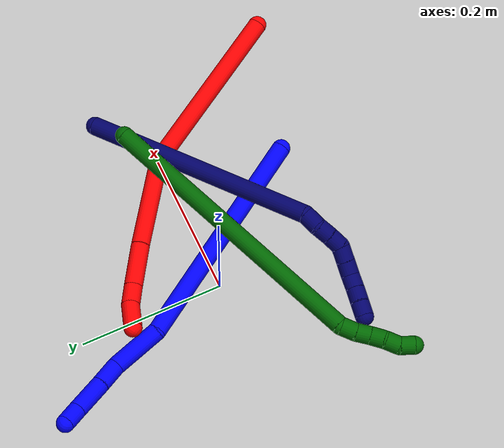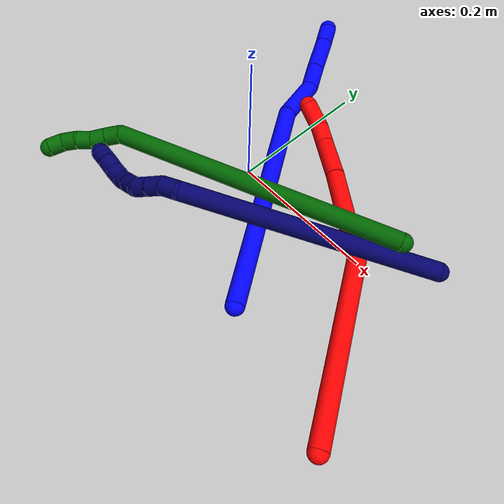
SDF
<sdf version="1.7">
 <world name="default">
  <model name="1">
   <static>0</static>
   <link name="1">
    <collision name="collision-cylinder-e_1_1_4">
     <pose>-0.05583 0.138479 0.051851 -1.21252 -0.361018 0.251735</pose>
     <geometry><cylinder><radius>0.0125</radius><length>0.316114</length></cylinder></geometry>
     <surface>
      <friction><ode><mu>1.16</mu><mu2>1.16</mu2><slip1>0</slip1><slip2>0</slip2></ode></friction>
      <contact><ode><kp>1e+06</kp><kd>1</kd><max_vel>0</max_vel><min_depth>0.001</min_depth></ode></contact>
     </surface>
    </collision>
    <visual name="visual-cylinder-e_1_1_4">
     <pose>-0.05583 0.138479 0.051851 -1.21252 -0.361018 0.251735</pose>
     <geometry><cylinder><radius>0.0125</radius><length>0.316114</length></cylinder></geometry>
     <material><ambient>0 0 1 1</ambient></material>
    </visual>
    <collision name="collision-cylinder-e_2_4_5">
     <pose>-0.131385 0.300863 0.121158 -0.940079 -0.587833 0.305145</pose>
     <geometry><cylinder><radius>0.0125</radius><length>0.07114</length></cylinder></geometry>
     <surface>
      <friction><ode><mu>1.16</mu><mu2>1.16</mu2><slip1>0</slip1><slip2>0</slip2></ode></friction>
      <contact><ode><kp>1e+06</kp><kd>1</kd><max_vel>0</max_vel><min_depth>0.001</min_depth></ode></contact>
     </surface>
    </collision>
    <visual name="visual-cylinder-e_2_4_5">
     <pose>-0.131385 0.300863 0.121158 -0.940079 -0.587833 0.305145</pose>
     <geometry><cylinder><radius>0.0125</radius><length>0.07114</length></cylinder></geometry>
     <material><ambient>0 0 1 1</ambient></material>
    </visual>
    <collision name="collision-cylinder-e_3_5_6">
     <pose>-0.159358 0.34055 0.141235 -1.40619 -0.47591 0.405519</pose>
     <geometry><cylinder><radius>0.0125</radius><length>0.036</length></cylinder></geometry>
     <surface>
      <friction><ode><mu>1.16</mu><mu2>1.16</mu2><slip1>0</slip1><slip2>0</slip2></ode></friction>
      <contact><ode><kp>1e+06</kp><kd>1</kd><max_vel>0</max_vel><min_depth>0.001</min_depth></ode></contact>
     </surface>
    </collision>
    <visual name="visual-cylinder-e_3_5_6">
     <pose>-0.159358 0.34055 0.141235 -1.40619 -0.47591 0.405519</pose>
     <geometry><cylinder><radius>0.0125</radius><length>0.036</length></cylinder></geometry>
     <material><ambient>0 0 1 1</ambient></material>
    </visual>
    <collision name="collision-cylinder-e_4_6_7">
     <pose>-0.179499 0.377821 0.148014 -1.37969 -0.497831 0.413452</pose>
     <geometry><cylinder><radius>0.0125</radius><length>0.049818</length></cylinder></geometry>
     <surface>
      <friction><ode><mu>1.16</mu><mu2>1.16</mu2><slip1>0</slip1><slip2>0</slip2></ode></friction>
      <contact><ode><kp>1e+06</kp><kd>1</kd><max_vel>0</max_vel><min_depth>0.001</min_depth></ode></contact>
     </surface>
    </collision>
    <visual name="visual-cylinder-e_4_6_7">
     <pose>-0.179499 0.377821 0.148014 -1.37969 -0.497831 0.413452</pose>
     <geometry><cylinder><radius>0.0125</radius><length>0.049818</length></cylinder></geometry>
     <material><ambient>0 0 1 1</ambient></material>
    </visual>
    <collision name="collision-cylinder-e_5_7_2">
     <pose>-0.1977 0.411143 0.153376 -1.46934 -0.487492 0.441979</pose>
     <geometry><cylinder><radius>0.0125</radius><length>0.026929</length></cylinder></geometry>
     <surface>
      <friction><ode><mu>1.16</mu><mu2>1.16</mu2><slip1>0</slip1><slip2>0</slip2></ode></friction>
      <contact><ode><kp>1e+06</kp><kd>1</kd><max_vel>0</max_vel><min_depth>0.001</min_depth></ode></contact>
     </surface>
    </collision>
    <visual name="visual-cylinder-e_5_7_2">
     <pose>-0.1977 0.411143 0.153376 -1.46934 -0.487492 0.441979</pose>
     <geometry><cylinder><radius>0.0125</radius><length>0.026929</length></cylinder></geometry>
     <material><ambient>0 0 1 1</ambient></material>
    </visual>
    <collision name="collision-sphere-2">
     <pose>-0.204007 0.422978 0.154581 0 -0 0</pose>
     <geometry><sphere><radius>0.0125</radius></sphere></geometry>
     <surface>
      <friction><ode><mu>1.16</mu><mu2>1.16</mu2><slip1>0</slip1><slip2>0</slip2></ode></friction>
      <contact><ode><kp>1e+06</kp><kd>1</kd><max_vel>0</max_vel><min_depth>0.001</min_depth></ode></contact>
     </surface>
    </collision>
    <visual name="visual-sphere-2">
     <pose>-0.204007 0.422978 0.154581 0 -0 0</pose>
     <geometry><sphere><radius>0.0125</radius></sphere></geometry>
     <material><ambient>0 0 1 1</ambient></material>
    </visual>
    <collision name="collision-sphere-7">
     <pose>-0.191393 0.399308 0.152171 0 -0 0</pose>
     <geometry><sphere><radius>0.0125</radius></sphere></geometry>
     <surface>
      <friction><ode><mu>1.16</mu><mu2>1.16</mu2><slip1>0</slip1><slip2>0</slip2></ode></friction>
      <contact><ode><kp>1e+06</kp><kd>1</kd><max_vel>0</max_vel><min_depth>0.001</min_depth></ode></contact>
     </surface>
    </collision>
    <visual name="visual-sphere-7">
     <pose>-0.191393 0.399308 0.152171 0 -0 0</pose>
     <geometry><sphere><radius>0.0125</radius></sphere></geometry>
     <material><ambient>0 0 1 1</ambient></material>
    </visual>
    <collision name="collision-sphere-6">
     <pose>-0.167604 0.356334 0.143857 0 -0 0</pose>
     <geometry><sphere><radius>0.0125</radius></sphere></geometry>
     <surface>
      <friction><ode><mu>1.16</mu><mu2>1.16</mu2><slip1>0</slip1><slip2>0</slip2></ode></friction>
      <contact><ode><kp>1e+06</kp><kd>1</kd><max_vel>0</max_vel><min_depth>0.001</min_depth></ode></contact>
     </surface>
    </collision>
    <visual name="visual-sphere-6">
     <pose>-0.167604 0.356334 0.143857 0 -0 0</pose>
     <geometry><sphere><radius>0.0125</radius></sphere></geometry>
     <material><ambient>0 0 1 1</ambient></material>
    </visual>
    <collision name="collision-sphere-5">
     <pose>-0.151111 0.324767 0.138613 0 -0 0</pose>
     <geometry><sphere><radius>0.0125</radius></sphere></geometry>
     <surface>
      <friction><ode><mu>1.16</mu><mu2>1.16</mu2><slip1>0</slip1><slip2>0</slip2></ode></friction>
      <contact><ode><kp>1e+06</kp><kd>1</kd><max_vel>0</max_vel><min_depth>0.001</min_depth></ode></contact>
     </surface>
    </collision>
    <visual name="visual-sphere-5">
     <pose>-0.151111 0.324767 0.138613 0 -0 0</pose>
     <geometry><sphere><radius>0.0125</radius></sphere></geometry>
     <material><ambient>0 0 1 1</ambient></material>
    </visual>
    <collision name="collision-sphere-1">
     <geometry><sphere><radius>0.0125</radius></sphere></geometry>
     <surface>
      <friction><ode><mu>1.16</mu><mu2>1.16</mu2><slip1>0</slip1><slip2>0</slip2></ode></friction>
      <contact><ode><kp>1e+06</kp><kd>1</kd><max_vel>0</max_vel><min_depth>0.001</min_depth></ode></contact>
     </surface>
    </collision>
    <visual name="visual-sphere-1">
     <geometry><sphere><radius>0.0125</radius></sphere></geometry>
     <material><ambient>0 0 1 1</ambient></material>
    </visual>
    <collision name="collision-sphere-4">
     <pose>-0.11166 0.276958 0.103702 0 -0 0</pose>
     <geometry><sphere><radius>0.0125</radius></sphere></geometry>
     <surface>
      <friction><ode><mu>1.16</mu><mu2>1.16</mu2><slip1>0</slip1><slip2>0</slip2></ode></friction>
      <contact><ode><kp>1e+06</kp><kd>1</kd><max_vel>0</max_vel><min_depth>0.001</min_depth></ode></contact>
     </surface>
    </collision>
    <visual name="visual-sphere-4">
     <pose>-0.11166 0.276958 0.103702 0 -0 0</pose>
     <geometry><sphere><radius>0.0125</radius></sphere></geometry>
     <material><ambient>0 0 1 1</ambient></material>
    </visual>
    <inertial>
     <pose>-0.093997 0.214664 0.083197 0 -0 0</pose>
     <mass>0.5</mass>
     <inertia>
      <ixx>0.003054</ixx>
      <ixy>0</ixy>
      <ixz>0</ixz>
      <iyy>0.001811</iyy>
      <iyz>0</iyz>
      <izz>-0.001383</izz>
     </inertia>
    </inertial>
   </link>
   <pose>0.144233 -0.157675 0.012123 2.89393 0.345631 -2.1791</pose>
  </model>
  <model name="2">
   <static>0</static>
   <link name="2">
    <collision name="collision-cylinder-e_1_1_4">
     <pose>-0.093471 0.075642 -0.018776 -1.81411 -0.875776 1.07883</pose>
     <geometry><cylinder><radius>0.0125</radius><length>0.243402</length></cylinder></geometry>
     <surface>
      <friction><ode><mu>1.16</mu><mu2>1.16</mu2><slip1>0</slip1><slip2>0</slip2></ode></friction>
      <contact><ode><kp>1e+06</kp><kd>1</kd><max_vel>0</max_vel><min_depth>0.001</min_depth></ode></contact>
     </surface>
    </collision>
    <visual name="visual-cylinder-e_1_1_4">
     <pose>-0.093471 0.075642 -0.018776 -1.81411 -0.875776 1.07883</pose>
     <geometry><cylinder><radius>0.0125</radius><length>0.243402</length></cylinder></geometry>
     <material><ambient>1 0 0 1</ambient></material>
    </visual>
    <collision name="collision-cylinder-e_2_4_5">
     <pose>-0.232215 0.183429 -0.071647 -2.38561 -0.768189 1.58848</pose>
     <geometry><cylinder><radius>0.0125</radius><length>0.130312</length></cylinder></geometry>
     <surface>
      <friction><ode><mu>1.16</mu><mu2>1.16</mu2><slip1>0</slip1><slip2>0</slip2></ode></friction>
      <contact><ode><kp>1e+06</kp><kd>1</kd><max_vel>0</max_vel><min_depth>0.001</min_depth></ode></contact>
     </surface>
    </collision>
    <visual name="visual-cylinder-e_2_4_5">
     <pose>-0.232215 0.183429 -0.071647 -2.38561 -0.768189 1.58848</pose>
     <geometry><cylinder><radius>0.0125</radius><length>0.130312</length></cylinder></geometry>
     <material><ambient>1 0 0 1</ambient></material>
    </visual>
    <collision name="collision-cylinder-e_3_5_6">
     <pose>-0.296247 0.23157 -0.122098 -2.36734 -0.686795 1.43995</pose>
     <geometry><cylinder><radius>0.0125</radius><length>0.059172</length></cylinder></geometry>
     <surface>
      <friction><ode><mu>1.16</mu><mu2>1.16</mu2><slip1>0</slip1><slip2>0</slip2></ode></friction>
      <contact><ode><kp>1e+06</kp><kd>1</kd><max_vel>0</max_vel><min_depth>0.001</min_depth></ode></contact>
     </surface>
    </collision>
    <visual name="visual-cylinder-e_3_5_6">
     <pose>-0.296247 0.23157 -0.122098 -2.36734 -0.686795 1.43995</pose>
     <geometry><cylinder><radius>0.0125</radius><length>0.059172</length></cylinder></geometry>
     <material><ambient>1 0 0 1</ambient></material>
    </visual>
    <collision name="collision-cylinder-e_4_6_7">
     <pose>-0.325308 0.253346 -0.146758 -2.53347 -0.794404 1.85713</pose>
     <geometry><cylinder><radius>0.0125</radius><length>0.028879</length></cylinder></geometry>
     <surface>
      <friction><ode><mu>1.16</mu><mu2>1.16</mu2><slip1>0</slip1><slip2>0</slip2></ode></friction>
      <contact><ode><kp>1e+06</kp><kd>1</kd><max_vel>0</max_vel><min_depth>0.001</min_depth></ode></contact>
     </surface>
    </collision>
    <visual name="visual-cylinder-e_4_6_7">
     <pose>-0.325308 0.253346 -0.146758 -2.53347 -0.794404 1.85713</pose>
     <geometry><cylinder><radius>0.0125</radius><length>0.028879</length></cylinder></geometry>
     <material><ambient>1 0 0 1</ambient></material>
    </visual>
    <collision name="collision-cylinder-e_5_7_2">
     <pose>-0.348696 0.262278 -0.168638 -2.91351 -0.753891 2.57832</pose>
     <geometry><cylinder><radius>0.0125</radius><length>0.038235</length></cylinder></geometry>
     <surface>
      <friction><ode><mu>1.16</mu><mu2>1.16</mu2><slip1>0</slip1><slip2>0</slip2></ode></friction>
      <contact><ode><kp>1e+06</kp><kd>1</kd><max_vel>0</max_vel><min_depth>0.001</min_depth></ode></contact>
     </surface>
    </collision>
    <visual name="visual-cylinder-e_5_7_2">
     <pose>-0.348696 0.262278 -0.168638 -2.91351 -0.753891 2.57832</pose>
     <geometry><cylinder><radius>0.0125</radius><length>0.038235</length></cylinder></geometry>
     <material><ambient>1 0 0 1</ambient></material>
    </visual>
    <collision name="collision-sphere-2">
     <pose>-0.361781 0.26543 -0.182215 0 -0 0</pose>
     <geometry><sphere><radius>0.0125</radius></sphere></geometry>
     <surface>
      <friction><ode><mu>1.16</mu><mu2>1.16</mu2><slip1>0</slip1><slip2>0</slip2></ode></friction>
      <contact><ode><kp>1e+06</kp><kd>1</kd><max_vel>0</max_vel><min_depth>0.001</min_depth></ode></contact>
     </surface>
    </collision>
    <visual name="visual-sphere-2">
     <pose>-0.361781 0.26543 -0.182215 0 -0 0</pose>
     <geometry><sphere><radius>0.0125</radius></sphere></geometry>
     <material><ambient>1 0 0 1</ambient></material>
    </visual>
    <collision name="collision-sphere-7">
     <pose>-0.33561 0.259127 -0.155062 0 -0 0</pose>
     <geometry><sphere><radius>0.0125</radius></sphere></geometry>
     <surface>
      <friction><ode><mu>1.16</mu><mu2>1.16</mu2><slip1>0</slip1><slip2>0</slip2></ode></friction>
      <contact><ode><kp>1e+06</kp><kd>1</kd><max_vel>0</max_vel><min_depth>0.001</min_depth></ode></contact>
     </surface>
    </collision>
    <visual name="visual-sphere-7">
     <pose>-0.33561 0.259127 -0.155062 0 -0 0</pose>
     <geometry><sphere><radius>0.0125</radius></sphere></geometry>
     <material><ambient>1 0 0 1</ambient></material>
    </visual>
    <collision name="collision-sphere-6">
     <pose>-0.315006 0.247566 -0.138454 0 -0 0</pose>
     <geometry><sphere><radius>0.0125</radius></sphere></geometry>
     <surface>
      <friction><ode><mu>1.16</mu><mu2>1.16</mu2><slip1>0</slip1><slip2>0</slip2></ode></friction>
      <contact><ode><kp>1e+06</kp><kd>1</kd><max_vel>0</max_vel><min_depth>0.001</min_depth></ode></contact>
     </surface>
    </collision>
    <visual name="visual-sphere-6">
     <pose>-0.315006 0.247566 -0.138454 0 -0 0</pose>
     <geometry><sphere><radius>0.0125</radius></sphere></geometry>
     <material><ambient>1 0 0 1</ambient></material>
    </visual>
    <collision name="collision-sphere-5">
     <pose>-0.277488 0.215573 -0.105741 0 -0 0</pose>
     <geometry><sphere><radius>0.0125</radius></sphere></geometry>
     <surface>
      <friction><ode><mu>1.16</mu><mu2>1.16</mu2><slip1>0</slip1><slip2>0</slip2></ode></friction>
      <contact><ode><kp>1e+06</kp><kd>1</kd><max_vel>0</max_vel><min_depth>0.001</min_depth></ode></contact>
     </surface>
    </collision>
    <visual name="visual-sphere-5">
     <pose>-0.277488 0.215573 -0.105741 0 -0 0</pose>
     <geometry><sphere><radius>0.0125</radius></sphere></geometry>
     <material><ambient>1 0 0 1</ambient></material>
    </visual>
    <collision name="collision-sphere-1">
     <geometry><sphere><radius>0.0125</radius></sphere></geometry>
     <surface>
      <friction><ode><mu>1.16</mu><mu2>1.16</mu2><slip1>0</slip1><slip2>0</slip2></ode></friction>
      <contact><ode><kp>1e+06</kp><kd>1</kd><max_vel>0</max_vel><min_depth>0.001</min_depth></ode></contact>
     </surface>
    </collision>
    <visual name="visual-sphere-1">
     <geometry><sphere><radius>0.0125</radius></sphere></geometry>
     <material><ambient>1 0 0 1</ambient></material>
    </visual>
    <collision name="collision-sphere-4">
     <pose>-0.186942 0.151284 -0.037553 0 -0 0</pose>
     <geometry><sphere><radius>0.0125</radius></sphere></geometry>
     <surface>
      <friction><ode><mu>1.16</mu><mu2>1.16</mu2><slip1>0</slip1><slip2>0</slip2></ode></friction>
      <contact><ode><kp>1e+06</kp><kd>1</kd><max_vel>0</max_vel><min_depth>0.001</min_depth></ode></contact>
     </surface>
    </collision>
    <visual name="visual-sphere-4">
     <pose>-0.186942 0.151284 -0.037553 0 -0 0</pose>
     <geometry><sphere><radius>0.0125</radius></sphere></geometry>
     <material><ambient>1 0 0 1</ambient></material>
    </visual>
    <inertial>
     <pose>-0.186536 0.146723 -0.063635 0 -0 0</pose>
     <mass>0.5</mass>
     <inertia>
      <ixx>0.001173</ixx>
      <ixy>0</ixy>
      <ixz>0</ixz>
      <iyy>0.001625</iyy>
      <iyz>0</iyz>
      <izz>0.000207</izz>
     </inertia>
    </inertial>
   </link>
   <pose>0.327459 -0.20726 0.013709 -1.52382 0.678196 -1.1389</pose>
  </model>
  <model name="6">
   <static>0</static>
   <link name="6">
    <collision name="collision-cylinder-e_1_1_4">
     <pose>-0.178353 -0.077156 0.040644 1.08596 -1.11602 -0.720496</pose>
     <geometry><cylinder><radius>0.0125</radius><length>0.397064</length></cylinder></geometry>
     <surface>
      <friction><ode><mu>1.16</mu><mu2>1.16</mu2><slip1>0</slip1><slip2>0</slip2></ode></friction>
      <contact><ode><kp>1e+06</kp><kd>1</kd><max_vel>0</max_vel><min_depth>0.001</min_depth></ode></contact>
     </surface>
    </collision>
    <visual name="visual-cylinder-e_1_1_4">
     <pose>-0.178353 -0.077156 0.040644 1.08596 -1.11602 -0.720496</pose>
     <geometry><cylinder><radius>0.0125</radius><length>0.397064</length></cylinder></geometry>
     <material><ambient>0 0.392157 0.003922 1</ambient></material>
    </visual>
    <collision name="collision-cylinder-e_2_4_5">
     <pose>-0.365967 -0.158929 0.078074 2.17893 -1.02491 -1.64502</pose>
     <geometry><cylinder><radius>0.0125</radius><length>0.02167</length></cylinder></geometry>
     <surface>
      <friction><ode><mu>1.16</mu><mu2>1.16</mu2><slip1>0</slip1><slip2>0</slip2></ode></friction>
      <contact><ode><kp>1e+06</kp><kd>1</kd><max_vel>0</max_vel><min_depth>0.001</min_depth></ode></contact>
     </surface>
    </collision>
    <visual name="visual-cylinder-e_2_4_5">
     <pose>-0.365967 -0.158929 0.078074 2.17893 -1.02491 -1.64502</pose>
     <geometry><cylinder><radius>0.0125</radius><length>0.02167</length></cylinder></geometry>
     <material><ambient>0 0.392157 0.003922 1</ambient></material>
    </visual>
    <collision name="collision-cylinder-e_3_5_6">
     <pose>-0.382937 -0.169257 0.071218 2.13861 -0.849943 -1.38014</pose>
     <geometry><cylinder><radius>0.0125</radius><length>0.020526</length></cylinder></geometry>
     <surface>
      <friction><ode><mu>1.16</mu><mu2>1.16</mu2><slip1>0</slip1><slip2>0</slip2></ode></friction>
      <contact><ode><kp>1e+06</kp><kd>1</kd><max_vel>0</max_vel><min_depth>0.001</min_depth></ode></contact>
     </surface>
    </collision>
    <visual name="visual-cylinder-e_3_5_6">
     <pose>-0.382937 -0.169257 0.071218 2.13861 -0.849943 -1.38014</pose>
     <geometry><cylinder><radius>0.0125</radius><length>0.020526</length></cylinder></geometry>
     <material><ambient>0 0.392157 0.003922 1</ambient></material>
    </visual>
    <collision name="collision-cylinder-e_4_6_7">
     <pose>-0.398237 -0.181466 0.066156 1.78576 -0.851235 -1.02551</pose>
     <geometry><cylinder><radius>0.0125</radius><length>0.020185</length></cylinder></geometry>
     <surface>
      <friction><ode><mu>1.16</mu><mu2>1.16</mu2><slip1>0</slip1><slip2>0</slip2></ode></friction>
      <contact><ode><kp>1e+06</kp><kd>1</kd><max_vel>0</max_vel><min_depth>0.001</min_depth></ode></contact>
     </surface>
    </collision>
    <visual name="visual-cylinder-e_4_6_7">
     <pose>-0.398237 -0.181466 0.066156 1.78576 -0.851235 -1.02551</pose>
     <geometry><cylinder><radius>0.0125</radius><length>0.020185</length></cylinder></geometry>
     <material><ambient>0 0.392157 0.003922 1</ambient></material>
    </visual>
    <collision name="collision-cylinder-e_5_7_8">
     <pose>-0.414379 -0.192566 0.061939 2.1172 -1.00875 -1.5524</pose>
     <geometry><cylinder><radius>0.0125</radius><length>0.020211</length></cylinder></geometry>
     <surface>
      <friction><ode><mu>1.16</mu><mu2>1.16</mu2><slip1>0</slip1><slip2>0</slip2></ode></friction>
      <contact><ode><kp>1e+06</kp><kd>1</kd><max_vel>0</max_vel><min_depth>0.001</min_depth></ode></contact>
     </surface>
    </collision>
    <visual name="visual-cylinder-e_5_7_8">
     <pose>-0.414379 -0.192566 0.061939 2.1172 -1.00875 -1.5524</pose>
     <geometry><cylinder><radius>0.0125</radius><length>0.020211</length></cylinder></geometry>
     <material><ambient>0 0.392157 0.003922 1</ambient></material>
    </visual>
    <collision name="collision-cylinder-e_6_8_2">
     <pose>-0.428705 -0.203875 0.054128 2.2125 -0.603745 -1.11198</pose>
     <geometry><cylinder><radius>0.0125</radius><length>0.020344</length></cylinder></geometry>
     <surface>
      <friction><ode><mu>1.16</mu><mu2>1.16</mu2><slip1>0</slip1><slip2>0</slip2></ode></friction>
      <contact><ode><kp>1e+06</kp><kd>1</kd><max_vel>0</max_vel><min_depth>0.001</min_depth></ode></contact>
     </surface>
    </collision>
    <visual name="visual-cylinder-e_6_8_2">
     <pose>-0.428705 -0.203875 0.054128 2.2125 -0.603745 -1.11198</pose>
     <geometry><cylinder><radius>0.0125</radius><length>0.020344</length></cylinder></geometry>
     <material><ambient>0 0.392157 0.003922 1</ambient></material>
    </visual>
    <collision name="collision-sphere-2">
     <pose>-0.43448 -0.210583 0.049116 0 -0 0</pose>
     <geometry><sphere><radius>0.0125</radius></sphere></geometry>
     <surface>
      <friction><ode><mu>1.16</mu><mu2>1.16</mu2><slip1>0</slip1><slip2>0</slip2></ode></friction>
      <contact><ode><kp>1e+06</kp><kd>1</kd><max_vel>0</max_vel><min_depth>0.001</min_depth></ode></contact>
     </surface>
    </collision>
    <visual name="visual-sphere-2">
     <pose>-0.43448 -0.210583 0.049116 0 -0 0</pose>
     <geometry><sphere><radius>0.0125</radius></sphere></geometry>
     <material><ambient>0 0.392157 0.003922 1</ambient></material>
    </visual>
    <collision name="collision-sphere-4">
     <pose>-0.356707 -0.154313 0.081288 0 -0 0</pose>
     <geometry><sphere><radius>0.0125</radius></sphere></geometry>
     <surface>
      <friction><ode><mu>1.16</mu><mu2>1.16</mu2><slip1>0</slip1><slip2>0</slip2></ode></friction>
      <contact><ode><kp>1e+06</kp><kd>1</kd><max_vel>0</max_vel><min_depth>0.001</min_depth></ode></contact>
     </surface>
    </collision>
    <visual name="visual-sphere-4">
     <pose>-0.356707 -0.154313 0.081288 0 -0 0</pose>
     <geometry><sphere><radius>0.0125</radius></sphere></geometry>
     <material><ambient>0 0.392157 0.003922 1</ambient></material>
    </visual>
    <collision name="collision-sphere-1">
     <geometry><sphere><radius>0.0125</radius></sphere></geometry>
     <surface>
      <friction><ode><mu>1.16</mu><mu2>1.16</mu2><slip1>0</slip1><slip2>0</slip2></ode></friction>
      <contact><ode><kp>1e+06</kp><kd>1</kd><max_vel>0</max_vel><min_depth>0.001</min_depth></ode></contact>
     </surface>
    </collision>
    <visual name="visual-sphere-1">
     <geometry><sphere><radius>0.0125</radius></sphere></geometry>
     <material><ambient>0 0.392157 0.003922 1</ambient></material>
    </visual>
    <collision name="collision-sphere-8">
     <pose>-0.42293 -0.197167 0.05914 0 -0 0</pose>
     <geometry><sphere><radius>0.0125</radius></sphere></geometry>
     <surface>
      <friction><ode><mu>1.16</mu><mu2>1.16</mu2><slip1>0</slip1><slip2>0</slip2></ode></friction>
      <contact><ode><kp>1e+06</kp><kd>1</kd><max_vel>0</max_vel><min_depth>0.001</min_depth></ode></contact>
     </surface>
    </collision>
    <visual name="visual-sphere-8">
     <pose>-0.42293 -0.197167 0.05914 0 -0 0</pose>
     <geometry><sphere><radius>0.0125</radius></sphere></geometry>
     <material><ambient>0 0.392157 0.003922 1</ambient></material>
    </visual>
    <collision name="collision-sphere-5">
     <pose>-0.375227 -0.163546 0.07486 0 -0 0</pose>
     <geometry><sphere><radius>0.0125</radius></sphere></geometry>
     <surface>
      <friction><ode><mu>1.16</mu><mu2>1.16</mu2><slip1>0</slip1><slip2>0</slip2></ode></friction>
      <contact><ode><kp>1e+06</kp><kd>1</kd><max_vel>0</max_vel><min_depth>0.001</min_depth></ode></contact>
     </surface>
    </collision>
    <visual name="visual-sphere-5">
     <pose>-0.375227 -0.163546 0.07486 0 -0 0</pose>
     <geometry><sphere><radius>0.0125</radius></sphere></geometry>
     <material><ambient>0 0.392157 0.003922 1</ambient></material>
    </visual>
    <collision name="collision-sphere-6">
     <pose>-0.390647 -0.174968 0.067575 0 -0 0</pose>
     <geometry><sphere><radius>0.0125</radius></sphere></geometry>
     <surface>
      <friction><ode><mu>1.16</mu><mu2>1.16</mu2><slip1>0</slip1><slip2>0</slip2></ode></friction>
      <contact><ode><kp>1e+06</kp><kd>1</kd><max_vel>0</max_vel><min_depth>0.001</min_depth></ode></contact>
     </surface>
    </collision>
    <visual name="visual-sphere-6">
     <pose>-0.390647 -0.174968 0.067575 0 -0 0</pose>
     <geometry><sphere><radius>0.0125</radius></sphere></geometry>
     <material><ambient>0 0.392157 0.003922 1</ambient></material>
    </visual>
    <collision name="collision-sphere-7">
     <pose>-0.405828 -0.187964 0.064737 0 -0 0</pose>
     <geometry><sphere><radius>0.0125</radius></sphere></geometry>
     <surface>
      <friction><ode><mu>1.16</mu><mu2>1.16</mu2><slip1>0</slip1><slip2>0</slip2></ode></friction>
      <contact><ode><kp>1e+06</kp><kd>1</kd><max_vel>0</max_vel><min_depth>0.001</min_depth></ode></contact>
     </surface>
    </collision>
    <visual name="visual-sphere-7">
     <pose>-0.405828 -0.187964 0.064737 0 -0 0</pose>
     <geometry><sphere><radius>0.0125</radius></sphere></geometry>
     <material><ambient>0 0.392157 0.003922 1</ambient></material>
    </visual>
    <inertial>
     <pose>-0.223487 -0.098513 0.045961 0 -0 0</pose>
     <mass>0.5</mass>
     <inertia>
      <ixx>0.000173</ixx>
      <ixy>0</ixy>
      <ixz>0</ixz>
      <iyy>0.003043</iyy>
      <iyz>0</iyz>
      <izz>0.006748</izz>
     </inertia>
    </inertial>
   </link>
   <pose>0.233207 0.034036 0.053063 -0.808544 -0.445494 0.254426</pose>
  </model>
  <model name="7">
   <static>0</static>
   <link name="7">
    <collision name="collision-cylinder-e_1_1_4">
     <pose>-0.095029 -0.041649 0.131849 0.305962 -0.602129 -0.095677</pose>
     <geometry><cylinder><radius>0.0125</radius><length>0.335555</length></cylinder></geometry>
     <surface>
      <friction><ode><mu>1.16</mu><mu2>1.16</mu2><slip1>0</slip1><slip2>0</slip2></ode></friction>
      <contact><ode><kp>1e+06</kp><kd>1</kd><max_vel>0</max_vel><min_depth>0.001</min_depth></ode></contact>
     </surface>
    </collision>
    <visual name="visual-cylinder-e_1_1_4">
     <pose>-0.095029 -0.041649 0.131849 0.305962 -0.602129 -0.095677</pose>
     <geometry><cylinder><radius>0.0125</radius><length>0.335555</length></cylinder></geometry>
     <material><ambient>0.003922 0 0.403922 1</ambient></material>
    </visual>
    <collision name="collision-cylinder-e_2_4_5">
     <pose>-0.199818 -0.085985 0.268816 0.483538 -1.03609 -0.27927</pose>
     <geometry><cylinder><radius>0.0125</radius><length>0.022687</length></cylinder></geometry>
     <surface>
      <friction><ode><mu>1.16</mu><mu2>1.16</mu2><slip1>0</slip1><slip2>0</slip2></ode></friction>
      <contact><ode><kp>1e+06</kp><kd>1</kd><max_vel>0</max_vel><min_depth>0.001</min_depth></ode></contact>
     </surface>
    </collision>
    <visual name="visual-cylinder-e_2_4_5">
     <pose>-0.199818 -0.085985 0.268816 0.483538 -1.03609 -0.27927</pose>
     <geometry><cylinder><radius>0.0125</radius><length>0.022687</length></cylinder></geometry>
     <material><ambient>0.003922 0 0.403922 1</ambient></material>
    </visual>
    <collision name="collision-cylinder-e_3_5_6">
     <pose>-0.217817 -0.093772 0.276572 1.09346 -0.96211 -0.615175</pose>
     <geometry><cylinder><radius>0.0125</radius><length>0.020085</length></cylinder></geometry>
     <surface>
      <friction><ode><mu>1.16</mu><mu2>1.16</mu2><slip1>0</slip1><slip2>0</slip2></ode></friction>
      <contact><ode><kp>1e+06</kp><kd>1</kd><max_vel>0</max_vel><min_depth>0.001</min_depth></ode></contact>
     </surface>
    </collision>
    <visual name="visual-cylinder-e_3_5_6">
     <pose>-0.217817 -0.093772 0.276572 1.09346 -0.96211 -0.615175</pose>
     <geometry><cylinder><radius>0.0125</radius><length>0.020085</length></cylinder></geometry>
     <material><ambient>0.003922 0 0.403922 1</ambient></material>
    </visual>
    <collision name="collision-cylinder-e_4_6_7">
     <pose>-0.234761 -0.10376 0.281356 1.1569 -1.02074 -0.700925</pose>
     <geometry><cylinder><radius>0.0125</radius><length>0.020422</length></cylinder></geometry>
     <surface>
      <friction><ode><mu>1.16</mu><mu2>1.16</mu2><slip1>0</slip1><slip2>0</slip2></ode></friction>
      <contact><ode><kp>1e+06</kp><kd>1</kd><max_vel>0</max_vel><min_depth>0.001</min_depth></ode></contact>
     </surface>
    </collision>
    <visual name="visual-cylinder-e_4_6_7">
     <pose>-0.234761 -0.10376 0.281356 1.1569 -1.02074 -0.700925</pose>
     <geometry><cylinder><radius>0.0125</radius><length>0.020422</length></cylinder></geometry>
     <material><ambient>0.003922 0 0.403922 1</ambient></material>
    </visual>
    <collision name="collision-cylinder-e_5_7_8">
     <pose>-0.25398 -0.109455 0.283231 1.8951 -1.48982 -1.81734</pose>
     <geometry><cylinder><radius>0.0125</radius><length>0.021098</length></cylinder></geometry>
     <surface>
      <friction><ode><mu>1.16</mu><mu2>1.16</mu2><slip1>0</slip1><slip2>0</slip2></ode></friction>
      <contact><ode><kp>1e+06</kp><kd>1</kd><max_vel>0</max_vel><min_depth>0.001</min_depth></ode></contact>
     </surface>
    </collision>
    <visual name="visual-cylinder-e_5_7_8">
     <pose>-0.25398 -0.109455 0.283231 1.8951 -1.48982 -1.81734</pose>
     <geometry><cylinder><radius>0.0125</radius><length>0.021098</length></cylinder></geometry>
     <material><ambient>0.003922 0 0.403922 1</ambient></material>
    </visual>
    <collision name="collision-cylinder-e_6_8_9">
     <pose>-0.274527 -0.110983 0.28267 1.9531 -1.49368 -1.88051</pose>
     <geometry><cylinder><radius>0.0125</radius><length>0.020124</length></cylinder></geometry>
     <surface>
      <friction><ode><mu>1.16</mu><mu2>1.16</mu2><slip1>0</slip1><slip2>0</slip2></ode></friction>
      <contact><ode><kp>1e+06</kp><kd>1</kd><max_vel>0</max_vel><min_depth>0.001</min_depth></ode></contact>
     </surface>
    </collision>
    <visual name="visual-cylinder-e_6_8_9">
     <pose>-0.274527 -0.110983 0.28267 1.9531 -1.49368 -1.88051</pose>
     <geometry><cylinder><radius>0.0125</radius><length>0.020124</length></cylinder></geometry>
     <material><ambient>0.003922 0 0.403922 1</ambient></material>
    </visual>
    <collision name="collision-cylinder-e_7_9_10">
     <pose>-0.293923 -0.109786 0.28532 -0.57777 -1.21229 0.406347</pose>
     <geometry><cylinder><radius>0.0125</radius><length>0.02</length></cylinder></geometry>
     <surface>
      <friction><ode><mu>1.16</mu><mu2>1.16</mu2><slip1>0</slip1><slip2>0</slip2></ode></friction>
      <contact><ode><kp>1e+06</kp><kd>1</kd><max_vel>0</max_vel><min_depth>0.001</min_depth></ode></contact>
     </surface>
    </collision>
    <visual name="visual-cylinder-e_7_9_10">
     <pose>-0.293923 -0.109786 0.28532 -0.57777 -1.21229 0.406347</pose>
     <geometry><cylinder><radius>0.0125</radius><length>0.02</length></cylinder></geometry>
     <material><ambient>0.003922 0 0.403922 1</ambient></material>
    </visual>
    <collision name="collision-cylinder-e_8_10_11">
     <pose>-0.312369 -0.105212 0.291498 -0.68727 -1.13856 0.450229</pose>
     <geometry><cylinder><radius>0.0125</radius><length>0.020003</length></cylinder></geometry>
     <surface>
      <friction><ode><mu>1.16</mu><mu2>1.16</mu2><slip1>0</slip1><slip2>0</slip2></ode></friction>
      <contact><ode><kp>1e+06</kp><kd>1</kd><max_vel>0</max_vel><min_depth>0.001</min_depth></ode></contact>
     </surface>
    </collision>
    <visual name="visual-cylinder-e_8_10_11">
     <pose>-0.312369 -0.105212 0.291498 -0.68727 -1.13856 0.450229</pose>
     <geometry><cylinder><radius>0.0125</radius><length>0.020003</length></cylinder></geometry>
     <material><ambient>0.003922 0 0.403922 1</ambient></material>
    </visual>
    <collision name="collision-cylinder-e_9_11_2">
     <pose>-0.330893 -0.100517 0.297376 -0.657229 -1.23141 0.473399</pose>
     <geometry><cylinder><radius>0.0125</radius><length>0.020025</length></cylinder></geometry>
     <surface>
      <friction><ode><mu>1.16</mu><mu2>1.16</mu2><slip1>0</slip1><slip2>0</slip2></ode></friction>
      <contact><ode><kp>1e+06</kp><kd>1</kd><max_vel>0</max_vel><min_depth>0.001</min_depth></ode></contact>
     </surface>
    </collision>
    <visual name="visual-cylinder-e_9_11_2">
     <pose>-0.330893 -0.100517 0.297376 -0.657229 -1.23141 0.473399</pose>
     <geometry><cylinder><radius>0.0125</radius><length>0.020025</length></cylinder></geometry>
     <material><ambient>0.003922 0 0.403922 1</ambient></material>
    </visual>
    <collision name="collision-sphere-2">
     <pose>-0.340334 -0.098481 0.300015 0 -0 0</pose>
     <geometry><sphere><radius>0.0125</radius></sphere></geometry>
     <surface>
      <friction><ode><mu>1.16</mu><mu2>1.16</mu2><slip1>0</slip1><slip2>0</slip2></ode></friction>
      <contact><ode><kp>1e+06</kp><kd>1</kd><max_vel>0</max_vel><min_depth>0.001</min_depth></ode></contact>
     </surface>
    </collision>
    <visual name="visual-sphere-2">
     <pose>-0.340334 -0.098481 0.300015 0 -0 0</pose>
     <geometry><sphere><radius>0.0125</radius></sphere></geometry>
     <material><ambient>0.003922 0 0.403922 1</ambient></material>
    </visual>
    <collision name="collision-sphere-11">
     <pose>-0.321451 -0.102553 0.294737 0 -0 0</pose>
     <geometry><sphere><radius>0.0125</radius></sphere></geometry>
     <surface>
      <friction><ode><mu>1.16</mu><mu2>1.16</mu2><slip1>0</slip1><slip2>0</slip2></ode></friction>
      <contact><ode><kp>1e+06</kp><kd>1</kd><max_vel>0</max_vel><min_depth>0.001</min_depth></ode></contact>
     </surface>
    </collision>
    <visual name="visual-sphere-11">
     <pose>-0.321451 -0.102553 0.294737 0 -0 0</pose>
     <geometry><sphere><radius>0.0125</radius></sphere></geometry>
     <material><ambient>0.003922 0 0.403922 1</ambient></material>
    </visual>
    <collision name="collision-sphere-10">
     <pose>-0.303287 -0.10787 0.28826 0 -0 0</pose>
     <geometry><sphere><radius>0.0125</radius></sphere></geometry>
     <surface>
      <friction><ode><mu>1.16</mu><mu2>1.16</mu2><slip1>0</slip1><slip2>0</slip2></ode></friction>
      <contact><ode><kp>1e+06</kp><kd>1</kd><max_vel>0</max_vel><min_depth>0.001</min_depth></ode></contact>
     </surface>
    </collision>
    <visual name="visual-sphere-10">
     <pose>-0.303287 -0.10787 0.28826 0 -0 0</pose>
     <geometry><sphere><radius>0.0125</radius></sphere></geometry>
     <material><ambient>0.003922 0 0.403922 1</ambient></material>
    </visual>
    <collision name="collision-sphere-9">
     <pose>-0.284559 -0.111702 0.282381 0 -0 0</pose>
     <geometry><sphere><radius>0.0125</radius></sphere></geometry>
     <surface>
      <friction><ode><mu>1.16</mu><mu2>1.16</mu2><slip1>0</slip1><slip2>0</slip2></ode></friction>
      <contact><ode><kp>1e+06</kp><kd>1</kd><max_vel>0</max_vel><min_depth>0.001</min_depth></ode></contact>
     </surface>
    </collision>
    <visual name="visual-sphere-9">
     <pose>-0.284559 -0.111702 0.282381 0 -0 0</pose>
     <geometry><sphere><radius>0.0125</radius></sphere></geometry>
     <material><ambient>0.003922 0 0.403922 1</ambient></material>
    </visual>
    <collision name="collision-sphere-4">
     <pose>-0.190058 -0.083297 0.263698 0 -0 0</pose>
     <geometry><sphere><radius>0.0125</radius></sphere></geometry>
     <surface>
      <friction><ode><mu>1.16</mu><mu2>1.16</mu2><slip1>0</slip1><slip2>0</slip2></ode></friction>
      <contact><ode><kp>1e+06</kp><kd>1</kd><max_vel>0</max_vel><min_depth>0.001</min_depth></ode></contact>
     </surface>
    </collision>
    <visual name="visual-sphere-4">
     <pose>-0.190058 -0.083297 0.263698 0 -0 0</pose>
     <geometry><sphere><radius>0.0125</radius></sphere></geometry>
     <material><ambient>0.003922 0 0.403922 1</ambient></material>
    </visual>
    <collision name="collision-sphere-1">
     <geometry><sphere><radius>0.0125</radius></sphere></geometry>
     <surface>
      <friction><ode><mu>1.16</mu><mu2>1.16</mu2><slip1>0</slip1><slip2>0</slip2></ode></friction>
      <contact><ode><kp>1e+06</kp><kd>1</kd><max_vel>0</max_vel><min_depth>0.001</min_depth></ode></contact>
     </surface>
    </collision>
    <visual name="visual-sphere-1">
     <geometry><sphere><radius>0.0125</radius></sphere></geometry>
     <material><ambient>0.003922 0 0.403922 1</ambient></material>
    </visual>
    <collision name="collision-sphere-8">
     <pose>-0.264494 -0.110264 0.282959 0 -0 0</pose>
     <geometry><sphere><radius>0.0125</radius></sphere></geometry>
     <surface>
      <friction><ode><mu>1.16</mu><mu2>1.16</mu2><slip1>0</slip1><slip2>0</slip2></ode></friction>
      <contact><ode><kp>1e+06</kp><kd>1</kd><max_vel>0</max_vel><min_depth>0.001</min_depth></ode></contact>
     </surface>
    </collision>
    <visual name="visual-sphere-8">
     <pose>-0.264494 -0.110264 0.282959 0 -0 0</pose>
     <geometry><sphere><radius>0.0125</radius></sphere></geometry>
     <material><ambient>0.003922 0 0.403922 1</ambient></material>
    </visual>
    <collision name="collision-sphere-5">
     <pose>-0.209578 -0.088672 0.273934 0 -0 0</pose>
     <geometry><sphere><radius>0.0125</radius></sphere></geometry>
     <surface>
      <friction><ode><mu>1.16</mu><mu2>1.16</mu2><slip1>0</slip1><slip2>0</slip2></ode></friction>
      <contact><ode><kp>1e+06</kp><kd>1</kd><max_vel>0</max_vel><min_depth>0.001</min_depth></ode></contact>
     </surface>
    </collision>
    <visual name="visual-sphere-5">
     <pose>-0.209578 -0.088672 0.273934 0 -0 0</pose>
     <geometry><sphere><radius>0.0125</radius></sphere></geometry>
     <material><ambient>0.003922 0 0.403922 1</ambient></material>
    </visual>
    <collision name="collision-sphere-6">
     <pose>-0.226056 -0.098873 0.27921 0 -0 0</pose>
     <geometry><sphere><radius>0.0125</radius></sphere></geometry>
     <surface>
      <friction><ode><mu>1.16</mu><mu2>1.16</mu2><slip1>0</slip1><slip2>0</slip2></ode></friction>
      <contact><ode><kp>1e+06</kp><kd>1</kd><max_vel>0</max_vel><min_depth>0.001</min_depth></ode></contact>
     </surface>
    </collision>
    <visual name="visual-sphere-6">
     <pose>-0.226056 -0.098873 0.27921 0 -0 0</pose>
     <geometry><sphere><radius>0.0125</radius></sphere></geometry>
     <material><ambient>0.003922 0 0.403922 1</ambient></material>
    </visual>
    <collision name="collision-sphere-7">
     <pose>-0.243465 -0.108646 0.283503 0 -0 0</pose>
     <geometry><sphere><radius>0.0125</radius></sphere></geometry>
     <surface>
      <friction><ode><mu>1.16</mu><mu2>1.16</mu2><slip1>0</slip1><slip2>0</slip2></ode></friction>
      <contact><ode><kp>1e+06</kp><kd>1</kd><max_vel>0</max_vel><min_depth>0.001</min_depth></ode></contact>
     </surface>
    </collision>
    <visual name="visual-sphere-7">
     <pose>-0.243465 -0.108646 0.283503 0 -0 0</pose>
     <geometry><sphere><radius>0.0125</radius></sphere></geometry>
     <material><ambient>0.003922 0 0.403922 1</ambient></material>
    </visual>
    <inertial>
     <pose>-0.150452 -0.061569 0.181597 0 -0 0</pose>
     <mass>0.5</mass>
     <inertia>
      <ixx>0.002321</ixx>
      <ixy>0</ixy>
      <ixz>0</ixz>
      <iyy>0.002807</iyy>
      <iyz>0</iyz>
      <izz>0.002611</izz>
     </inertia>
    </inertial>
   </link>
   <pose>0.280115 0.058237 0.014781 0.595865 -0.445606 -0.109661</pose>
  </model>
 </world>
</sdf>
